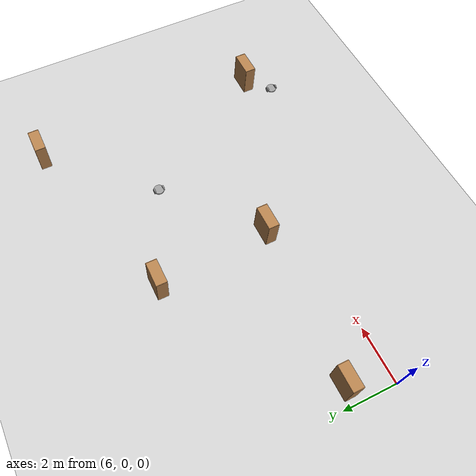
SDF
<sdf version="1.7">
 <world name="default">
  <model name="ground_plane">
   <static>1</static>
   <link name="link">
    <collision name="collision">
     <geometry><plane><normal>0 0 1</normal><size>100 100</size></plane></geometry>
     <surface>
      <contact><collide_bitmask>65535</collide_bitmask></contact>
      <friction><ode><mu>100</mu><mu2>50</mu2></ode></friction>
     </surface>
    </collision>
    <visual name="visual">
     <cast_shadows>0</cast_shadows>
     <geometry><plane><normal>0 0 1</normal><size>100 100</size></plane></geometry>
     <material>
      <script><uri>file://media/materials/scripts/gazebo.material</uri><name>Gazebo/Grey</name></script>
     </material>
    </visual>
   </link>
  </model>
  <model name="myrooomba2">
   <link name="link_1">
    <inertial>
     <mass>1</mass>
     <inertia><ixx>0.145833</ixx><ixy>0</ixy><ixz>0</ixz><iyy>0.145833</iyy><iyz>0</iyz><izz>0.125</izz></inertia>
     <pose>0 0 0.2 0 -0 0</pose>
    </inertial>
    <pose>0.330896 -0.819505 0.5 0 -0 0</pose>
    <visual name="visual">
     <geometry><cylinder><radius>0.2</radius><length>0.05</length></cylinder></geometry>
     <material>
      <lighting>1</lighting>
      <script><uri>file://media/materials/scripts/gazebo.material</uri><name>Gazebo/Grey</name></script>
      <shader type="pixel"><normal_map>__default__</normal_map></shader>
      <ambient>0.3 0.3 0.3 1</ambient>
      <diffuse>0.7 0.7 0.7 1</diffuse>
      <specular>0.01 0.01 0.01 1</specular>
      <emissive>0 0 0 1</emissive>
     </material>
    </visual>
    <collision name="collision">
     <geometry><cylinder><radius>0.2</radius><length>0.05</length></cylinder></geometry>
     <surface>
      <friction>
       <ode><mu>1</mu><mu2>1</mu2><fdir1>0 0 0</fdir1><slip1>0</slip1><slip2>0</slip2></ode>
       <torsional>
        <coefficient>1</coefficient>
        <patch_radius>0</patch_radius>
        <surface_radius>0</surface_radius>
        <use_patch_radius>1</use_patch_radius>
        <ode><slip>0</slip></ode>
       </torsional>
      </friction>
      <bounce><restitution_coefficient>0</restitution_coefficient><threshold>1e+06</threshold></bounce>
      <contact>
       <collide_without_contact>0</collide_without_contact>
       <collide_without_contact_bitmask>1</collide_without_contact_bitmask>
       <collide_bitmask>1</collide_bitmask>
       <ode>
        <soft_cfm>0</soft_cfm>
        <soft_erp>0.2</soft_erp>
        <kp>1e+13</kp>
        <kd>1</kd>
        <max_vel>0.01</max_vel>
        <min_depth>0</min_depth>
       </ode>
       <bullet>
        <split_impulse>1</split_impulse>
        <split_impulse_penetration_threshold>-0.01</split_impulse_penetration_threshold>
        <soft_cfm>0</soft_cfm>
        <soft_erp>0.2</soft_erp>
        <kp>1e+13</kp>
        <kd>1</kd>
       </bullet>
      </contact>
     </surface>
    </collision>
   </link>
   <link name="link_2_clone">
    <inertial>
     <mass>1</mass>
     <inertia><ixx>0.145833</ixx><ixy>0</ixy><ixz>0</ixz><iyy>0.145833</iyy><iyz>0</iyz><izz>0.125</izz></inertia>
    </inertial>
    <pose>0.330896 -0.994495 0.5 1.5707 -0 0</pose>
    <visual name="visual">
     <geometry><cylinder><radius>0.1</radius><length>0.05</length></cylinder></geometry>
     <material>
      <lighting>1</lighting>
      <script><uri>file://media/materials/scripts/gazebo.material</uri><name>Gazebo/Grey</name></script>
      <shader type="pixel"><normal_map>__default__</normal_map></shader>
      <ambient>0.3 0.3 0.3 1</ambient>
      <diffuse>0.7 0.7 0.7 1</diffuse>
      <specular>0.01 0.01 0.01 1</specular>
      <emissive>0 0 0 1</emissive>
     </material>
    </visual>
    <collision name="collision">
     <geometry><cylinder><radius>0.1</radius><length>0.05</length></cylinder></geometry>
     <surface>
      <friction>
       <ode><mu>1</mu><mu2>1</mu2><fdir1>0 0 0</fdir1><slip1>0</slip1><slip2>0</slip2></ode>
       <torsional>
        <coefficient>1</coefficient>
        <patch_radius>0</patch_radius>
        <surface_radius>0</surface_radius>
        <use_patch_radius>1</use_patch_radius>
        <ode><slip>0</slip></ode>
       </torsional>
      </friction>
      <bounce><restitution_coefficient>0</restitution_coefficient><threshold>1e+06</threshold></bounce>
      <contact>
       <collide_without_contact>0</collide_without_contact>
       <collide_without_contact_bitmask>1</collide_without_contact_bitmask>
       <collide_bitmask>1</collide_bitmask>
       <ode>
        <soft_cfm>0</soft_cfm>
        <soft_erp>0.2</soft_erp>
        <kp>1e+13</kp>
        <kd>1</kd>
        <max_vel>0.01</max_vel>
        <min_depth>0</min_depth>
       </ode>
       <bullet>
        <split_impulse>1</split_impulse>
        <split_impulse_penetration_threshold>-0.01</split_impulse_penetration_threshold>
        <soft_cfm>0</soft_cfm>
        <soft_erp>0.2</soft_erp>
        <kp>1e+13</kp>
        <kd>1</kd>
       </bullet>
      </contact>
     </surface>
    </collision>
   </link>
   <link name="link_2_clone_clone">
    <inertial>
     <mass>1</mass>
     <inertia><ixx>0.145833</ixx><ixy>0</ixy><ixz>0</ixz><iyy>0.145833</iyy><iyz>0</iyz><izz>0.125</izz></inertia>
    </inertial>
    <pose>0.330896 -0.644515 0.5 1.5707 -0 0</pose>
    <visual name="visual">
     <geometry><cylinder><radius>0.1</radius><length>0.05</length></cylinder></geometry>
     <material>
      <lighting>1</lighting>
      <script><uri>file://media/materials/scripts/gazebo.material</uri><name>Gazebo/Grey</name></script>
      <shader type="pixel"><normal_map>__default__</normal_map></shader>
      <ambient>0.3 0.3 0.3 1</ambient>
      <diffuse>0.7 0.7 0.7 1</diffuse>
      <specular>0.01 0.01 0.01 1</specular>
      <emissive>0 0 0 1</emissive>
     </material>
    </visual>
    <collision name="collision">
     <geometry><cylinder><radius>0.1</radius><length>0.05</length></cylinder></geometry>
     <surface>
      <friction>
       <ode><mu>1</mu><mu2>1</mu2><fdir1>0 0 0</fdir1><slip1>0</slip1><slip2>0</slip2></ode>
       <torsional>
        <coefficient>1</coefficient>
        <patch_radius>0</patch_radius>
        <surface_radius>0</surface_radius>
        <use_patch_radius>1</use_patch_radius>
        <ode><slip>0</slip></ode>
       </torsional>
      </friction>
      <bounce><restitution_coefficient>0</restitution_coefficient><threshold>1e+06</threshold></bounce>
      <contact>
       <collide_without_contact>0</collide_without_contact>
       <collide_without_contact_bitmask>1</collide_without_contact_bitmask>
       <collide_bitmask>1</collide_bitmask>
       <ode>
        <soft_cfm>0</soft_cfm>
        <soft_erp>0.2</soft_erp>
        <kp>1e+13</kp>
        <kd>1</kd>
        <max_vel>0.01</max_vel>
        <min_depth>0</min_depth>
       </ode>
       <bullet>
        <split_impulse>1</split_impulse>
        <split_impulse_penetration_threshold>-0.01</split_impulse_penetration_threshold>
        <soft_cfm>0</soft_cfm>
        <soft_erp>0.2</soft_erp>
        <kp>1e+13</kp>
        <kd>1</kd>
       </bullet>
      </contact>
     </surface>
    </collision>
   </link>
   <joint name="link_1_JOINT_2" type="revolute">
    <parent>link_1</parent>
    <child>link_2_clone</child>
    <axis>
     <xyz>0 0 1</xyz>
     <limit>
      <lower>-1.79769e+308</lower>
      <upper>1.79769e+308</upper>
      <effort>-1</effort>
      <velocity>-1</velocity>
     </limit>
     <dynamics>
      <spring_reference>0</spring_reference>
      <spring_stiffness>0</spring_stiffness>
      <damping>0</damping>
     </dynamics>
    </axis>
    <physics>
     <ode><limit><cfm>0</cfm><erp>0.2</erp></limit><suspension><cfm>0</cfm><erp>0.2</erp></suspension></ode>
    </physics>
   </joint>
   <joint name="link_1_JOINT_3" type="revolute">
    <parent>link_1</parent>
    <child>link_2_clone_clone</child>
    <axis>
     <xyz>0 0 1</xyz>
     <limit>
      <lower>-1.79769e+308</lower>
      <upper>1.79769e+308</upper>
      <effort>-1</effort>
      <velocity>-1</velocity>
     </limit>
     <dynamics>
      <spring_reference>0</spring_reference>
      <spring_stiffness>0</spring_stiffness>
      <damping>0</damping>
     </dynamics>
    </axis>
    <physics>
     <ode><limit><cfm>0</cfm><erp>0.2</erp></limit><suspension><cfm>0</cfm><erp>0.2</erp></suspension></ode>
    </physics>
   </joint>
   <static>0</static>
   <pose>17.9799 -1.41612 -0.399997 0 -0 0</pose>
  </model>
  <model name="myrooomba2_0">
   <link name="link_1">
    <inertial>
     <mass>1</mass>
     <inertia><ixx>0.145833</ixx><ixy>0</ixy><ixz>0</ixz><iyy>0.145833</iyy><iyz>0</iyz><izz>0.125</izz></inertia>
     <pose>0 0 0.2 0 -0 0</pose>
    </inertial>
    <pose>0.330896 -0.819505 0.5 0 -0 0</pose>
    <visual name="visual">
     <geometry><cylinder><radius>0.2</radius><length>0.05</length></cylinder></geometry>
     <material>
      <lighting>1</lighting>
      <script><uri>file://media/materials/scripts/gazebo.material</uri><name>Gazebo/Grey</name></script>
      <shader type="pixel"><normal_map>__default__</normal_map></shader>
      <ambient>0.3 0.3 0.3 1</ambient>
      <diffuse>0.7 0.7 0.7 1</diffuse>
      <specular>0.01 0.01 0.01 1</specular>
      <emissive>0 0 0 1</emissive>
     </material>
    </visual>
    <collision name="collision">
     <geometry><cylinder><radius>0.2</radius><length>0.05</length></cylinder></geometry>
     <surface>
      <friction>
       <ode><mu>1</mu><mu2>1</mu2><fdir1>0 0 0</fdir1><slip1>0</slip1><slip2>0</slip2></ode>
       <torsional>
        <coefficient>1</coefficient>
        <patch_radius>0</patch_radius>
        <surface_radius>0</surface_radius>
        <use_patch_radius>1</use_patch_radius>
        <ode><slip>0</slip></ode>
       </torsional>
      </friction>
      <bounce><restitution_coefficient>0</restitution_coefficient><threshold>1e+06</threshold></bounce>
      <contact>
       <collide_without_contact>0</collide_without_contact>
       <collide_without_contact_bitmask>1</collide_without_contact_bitmask>
       <collide_bitmask>1</collide_bitmask>
       <ode>
        <soft_cfm>0</soft_cfm>
        <soft_erp>0.2</soft_erp>
        <kp>1e+13</kp>
        <kd>1</kd>
        <max_vel>0.01</max_vel>
        <min_depth>0</min_depth>
       </ode>
       <bullet>
        <split_impulse>1</split_impulse>
        <split_impulse_penetration_threshold>-0.01</split_impulse_penetration_threshold>
        <soft_cfm>0</soft_cfm>
        <soft_erp>0.2</soft_erp>
        <kp>1e+13</kp>
        <kd>1</kd>
       </bullet>
      </contact>
     </surface>
    </collision>
   </link>
   <link name="link_2_clone">
    <inertial>
     <mass>1</mass>
     <inertia><ixx>0.145833</ixx><ixy>0</ixy><ixz>0</ixz><iyy>0.145833</iyy><iyz>0</iyz><izz>0.125</izz></inertia>
    </inertial>
    <pose>0.330896 -0.994495 0.5 1.5707 -0 0</pose>
    <visual name="visual">
     <geometry><cylinder><radius>0.1</radius><length>0.05</length></cylinder></geometry>
     <material>
      <lighting>1</lighting>
      <script><uri>file://media/materials/scripts/gazebo.material</uri><name>Gazebo/Grey</name></script>
      <shader type="pixel"><normal_map>__default__</normal_map></shader>
      <ambient>0.3 0.3 0.3 1</ambient>
      <diffuse>0.7 0.7 0.7 1</diffuse>
      <specular>0.01 0.01 0.01 1</specular>
      <emissive>0 0 0 1</emissive>
     </material>
    </visual>
    <collision name="collision">
     <geometry><cylinder><radius>0.1</radius><length>0.05</length></cylinder></geometry>
     <surface>
      <friction>
       <ode><mu>1</mu><mu2>1</mu2><fdir1>0 0 0</fdir1><slip1>0</slip1><slip2>0</slip2></ode>
       <torsional>
        <coefficient>1</coefficient>
        <patch_radius>0</patch_radius>
        <surface_radius>0</surface_radius>
        <use_patch_radius>1</use_patch_radius>
        <ode><slip>0</slip></ode>
       </torsional>
      </friction>
      <bounce><restitution_coefficient>0</restitution_coefficient><threshold>1e+06</threshold></bounce>
      <contact>
       <collide_without_contact>0</collide_without_contact>
       <collide_without_contact_bitmask>1</collide_without_contact_bitmask>
       <collide_bitmask>1</collide_bitmask>
       <ode>
        <soft_cfm>0</soft_cfm>
        <soft_erp>0.2</soft_erp>
        <kp>1e+13</kp>
        <kd>1</kd>
        <max_vel>0.01</max_vel>
        <min_depth>0</min_depth>
       </ode>
       <bullet>
        <split_impulse>1</split_impulse>
        <split_impulse_penetration_threshold>-0.01</split_impulse_penetration_threshold>
        <soft_cfm>0</soft_cfm>
        <soft_erp>0.2</soft_erp>
        <kp>1e+13</kp>
        <kd>1</kd>
       </bullet>
      </contact>
     </surface>
    </collision>
   </link>
   <link name="link_2_clone_clone">
    <inertial>
     <mass>1</mass>
     <inertia><ixx>0.145833</ixx><ixy>0</ixy><ixz>0</ixz><iyy>0.145833</iyy><iyz>0</iyz><izz>0.125</izz></inertia>
    </inertial>
    <pose>0.330896 -0.644515 0.5 1.5707 -0 0</pose>
    <visual name="visual">
     <geometry><cylinder><radius>0.1</radius><length>0.05</length></cylinder></geometry>
     <material>
      <lighting>1</lighting>
      <script><uri>file://media/materials/scripts/gazebo.material</uri><name>Gazebo/Grey</name></script>
      <shader type="pixel"><normal_map>__default__</normal_map></shader>
      <ambient>0.3 0.3 0.3 1</ambient>
      <diffuse>0.7 0.7 0.7 1</diffuse>
      <specular>0.01 0.01 0.01 1</specular>
      <emissive>0 0 0 1</emissive>
     </material>
    </visual>
    <collision name="collision">
     <geometry><cylinder><radius>0.1</radius><length>0.05</length></cylinder></geometry>
     <surface>
      <friction>
       <ode><mu>1</mu><mu2>1</mu2><fdir1>0 0 0</fdir1><slip1>0</slip1><slip2>0</slip2></ode>
       <torsional>
        <coefficient>1</coefficient>
        <patch_radius>0</patch_radius>
        <surface_radius>0</surface_radius>
        <use_patch_radius>1</use_patch_radius>
        <ode><slip>0</slip></ode>
       </torsional>
      </friction>
      <bounce><restitution_coefficient>0</restitution_coefficient><threshold>1e+06</threshold></bounce>
      <contact>
       <collide_without_contact>0</collide_without_contact>
       <collide_without_contact_bitmask>1</collide_without_contact_bitmask>
       <collide_bitmask>1</collide_bitmask>
       <ode>
        <soft_cfm>0</soft_cfm>
        <soft_erp>0.2</soft_erp>
        <kp>1e+13</kp>
        <kd>1</kd>
        <max_vel>0.01</max_vel>
        <min_depth>0</min_depth>
       </ode>
       <bullet>
        <split_impulse>1</split_impulse>
        <split_impulse_penetration_threshold>-0.01</split_impulse_penetration_threshold>
        <soft_cfm>0</soft_cfm>
        <soft_erp>0.2</soft_erp>
        <kp>1e+13</kp>
        <kd>1</kd>
       </bullet>
      </contact>
     </surface>
    </collision>
   </link>
   <joint name="link_1_JOINT_2" type="revolute">
    <parent>link_1</parent>
    <child>link_2_clone</child>
    <axis>
     <xyz>0 0 1</xyz>
     <limit>
      <lower>-1.79769e+308</lower>
      <upper>1.79769e+308</upper>
      <effort>-1</effort>
      <velocity>-1</velocity>
     </limit>
     <dynamics>
      <spring_reference>0</spring_reference>
      <spring_stiffness>0</spring_stiffness>
      <damping>0</damping>
     </dynamics>
    </axis>
    <physics>
     <ode><limit><cfm>0</cfm><erp>0.2</erp></limit><suspension><cfm>0</cfm><erp>0.2</erp></suspension></ode>
    </physics>
   </joint>
   <joint name="link_1_JOINT_3" type="revolute">
    <parent>link_1</parent>
    <child>link_2_clone_clone</child>
    <axis>
     <xyz>0 0 1</xyz>
     <limit>
      <lower>-1.79769e+308</lower>
      <upper>1.79769e+308</upper>
      <effort>-1</effort>
      <velocity>-1</velocity>
     </limit>
     <dynamics>
      <spring_reference>0</spring_reference>
      <spring_stiffness>0</spring_stiffness>
      <damping>0</damping>
     </dynamics>
    </axis>
    <physics>
     <ode><limit><cfm>0</cfm><erp>0.2</erp></limit><suspension><cfm>0</cfm><erp>0.2</erp></suspension></ode>
    </physics>
   </joint>
   <static>0</static>
   <pose>15.4229 4.77618 -0.399995 4e-06 -0 0</pose>
  </model>
  <model name="bookshelf">
   <static>1</static>
   <link name="link">
    <inertial><mass>1</mass></inertial>
    <collision name="back">
     <pose>0 0.005 0.6 0 -0 0</pose>
     <geometry><box><size>0.9 0.01 1.2</size></box></geometry>
    </collision>
    <visual name="visual1">
     <pose>0 0.005 0.6 0 -0 0</pose>
     <geometry><box><size>0.9 0.01 1.2</size></box></geometry>
     <material>
      <script><uri>file://media/materials/scripts/gazebo.material</uri><name>Gazebo/Wood</name></script>
     </material>
    </visual>
    <collision name="left_side">
     <pose>0.45 -0.195 0.6 0 -0 0</pose>
     <geometry><box><size>0.02 0.4 1.2</size></box></geometry>
    </collision>
    <visual name="visual2">
     <pose>0.45 -0.195 0.6 0 -0 0</pose>
     <geometry><box><size>0.02 0.4 1.2</size></box></geometry>
     <material>
      <script><uri>file://media/materials/scripts/gazebo.material</uri><name>Gazebo/Wood</name></script>
     </material>
    </visual>
    <collision name="right_side">
     <pose>-0.45 -0.195 0.6 0 -0 0</pose>
     <geometry><box><size>0.02 0.4 1.2</size></box></geometry>
    </collision>
    <visual name="visual3">
     <pose>-0.45 -0.195 0.6 0 -0 0</pose>
     <geometry><box><size>0.02 0.4 1.2</size></box></geometry>
     <material>
      <script><uri>file://media/materials/scripts/gazebo.material</uri><name>Gazebo/Wood</name></script>
     </material>
    </visual>
    <collision name="bottom">
     <pose>0 -0.195 0.03 0 -0 0</pose>
     <geometry><box><size>0.88 0.4 0.06</size></box></geometry>
    </collision>
    <visual name="visual4">
     <pose>0 -0.195 0.03 0 -0 0</pose>
     <geometry><box><size>0.88 0.4 0.06</size></box></geometry>
     <material>
      <script><uri>file://media/materials/scripts/gazebo.material</uri><name>Gazebo/Wood</name></script>
     </material>
    </visual>
    <collision name="top">
     <pose>0 -0.195 1.19 0 -0 0</pose>
     <geometry><box><size>0.88 0.4 0.02</size></box></geometry>
    </collision>
    <visual name="visual5">
     <pose>0 -0.195 1.19 0 -0 0</pose>
     <geometry><box><size>0.88 0.4 0.02</size></box></geometry>
     <material>
      <script><uri>file://media/materials/scripts/gazebo.material</uri><name>Gazebo/Wood</name></script>
     </material>
    </visual>
    <collision name="low_shelf">
     <pose>0 -0.195 0.43 0 -0 0</pose>
     <geometry><box><size>0.88 0.4 0.02</size></box></geometry>
    </collision>
    <visual name="visual6">
     <pose>0 -0.195 0.43 0 -0 0</pose>
     <geometry><box><size>0.88 0.4 0.02</size></box></geometry>
     <material>
      <script><uri>file://media/materials/scripts/gazebo.material</uri><name>Gazebo/Wood</name></script>
     </material>
    </visual>
    <collision name="high_shelf">
     <pose>0 -0.195 0.8 0 -0 0</pose>
     <geometry><box><size>0.88 0.4 0.02</size></box></geometry>
    </collision>
    <visual name="visual7">
     <pose>0 -0.195 0.8 0 -0 0</pose>
     <geometry><box><size>0.88 0.4 0.02</size></box></geometry>
     <material>
      <script><uri>file://media/materials/scripts/gazebo.material</uri><name>Gazebo/Wood</name></script>
     </material>
    </visual>
   </link>
   <pose>6.6918 1.77347 0 0 -0 0</pose>
  </model>
  <model name="bookshelf_3">
   <static>1</static>
   <link name="link">
    <inertial><mass>1</mass></inertial>
    <collision name="back">
     <pose>0 0.005 0.6 0 -0 0</pose>
     <geometry><box><size>0.9 0.01 1.2</size></box></geometry>
    </collision>
    <visual name="visual1">
     <pose>0 0.005 0.6 0 -0 0</pose>
     <geometry><box><size>0.9 0.01 1.2</size></box></geometry>
     <material>
      <script><uri>file://media/materials/scripts/gazebo.material</uri><name>Gazebo/Wood</name></script>
     </material>
    </visual>
    <collision name="left_side">
     <pose>0.45 -0.195 0.6 0 -0 0</pose>
     <geometry><box><size>0.02 0.4 1.2</size></box></geometry>
    </collision>
    <visual name="visual2">
     <pose>0.45 -0.195 0.6 0 -0 0</pose>
     <geometry><box><size>0.02 0.4 1.2</size></box></geometry>
     <material>
      <script><uri>file://media/materials/scripts/gazebo.material</uri><name>Gazebo/Wood</name></script>
     </material>
    </visual>
    <collision name="right_side">
     <pose>-0.45 -0.195 0.6 0 -0 0</pose>
     <geometry><box><size>0.02 0.4 1.2</size></box></geometry>
    </collision>
    <visual name="visual3">
     <pose>-0.45 -0.195 0.6 0 -0 0</pose>
     <geometry><box><size>0.02 0.4 1.2</size></box></geometry>
     <material>
      <script><uri>file://media/materials/scripts/gazebo.material</uri><name>Gazebo/Wood</name></script>
     </material>
    </visual>
    <collision name="bottom">
     <pose>0 -0.195 0.03 0 -0 0</pose>
     <geometry><box><size>0.88 0.4 0.06</size></box></geometry>
    </collision>
    <visual name="visual4">
     <pose>0 -0.195 0.03 0 -0 0</pose>
     <geometry><box><size>0.88 0.4 0.06</size></box></geometry>
     <material>
      <script><uri>file://media/materials/scripts/gazebo.material</uri><name>Gazebo/Wood</name></script>
     </material>
    </visual>
    <collision name="top">
     <pose>0 -0.195 1.19 0 -0 0</pose>
     <geometry><box><size>0.88 0.4 0.02</size></box></geometry>
    </collision>
    <visual name="visual5">
     <pose>0 -0.195 1.19 0 -0 0</pose>
     <geometry><box><size>0.88 0.4 0.02</size></box></geometry>
     <material>
      <script><uri>file://media/materials/scripts/gazebo.material</uri><name>Gazebo/Wood</name></script>
     </material>
    </visual>
    <collision name="low_shelf">
     <pose>0 -0.195 0.43 0 -0 0</pose>
     <geometry><box><size>0.88 0.4 0.02</size></box></geometry>
    </collision>
    <visual name="visual6">
     <pose>0 -0.195 0.43 0 -0 0</pose>
     <geometry><box><size>0.88 0.4 0.02</size></box></geometry>
     <material>
      <script><uri>file://media/materials/scripts/gazebo.material</uri><name>Gazebo/Wood</name></script>
     </material>
    </visual>
    <collision name="high_shelf">
     <pose>0 -0.195 0.8 0 -0 0</pose>
     <geometry><box><size>0.88 0.4 0.02</size></box></geometry>
    </collision>
    <visual name="visual7">
     <pose>0 -0.195 0.8 0 -0 0</pose>
     <geometry><box><size>0.88 0.4 0.02</size></box></geometry>
     <material>
      <script><uri>file://media/materials/scripts/gazebo.material</uri><name>Gazebo/Wood</name></script>
     </material>
    </visual>
   </link>
   <pose>12.5249 1.39573 0 0 -0 0</pose>
  </model>
  <model name="bookshelf_4">
   <static>1</static>
   <link name="link">
    <inertial><mass>1</mass></inertial>
    <collision name="back">
     <pose>0 0.005 0.6 0 -0 0</pose>
     <geometry><box><size>0.9 0.01 1.2</size></box></geometry>
    </collision>
    <visual name="visual1">
     <pose>0 0.005 0.6 0 -0 0</pose>
     <geometry><box><size>0.9 0.01 1.2</size></box></geometry>
     <material>
      <script><uri>file://media/materials/scripts/gazebo.material</uri><name>Gazebo/Wood</name></script>
     </material>
    </visual>
    <collision name="left_side">
     <pose>0.45 -0.195 0.6 0 -0 0</pose>
     <geometry><box><size>0.02 0.4 1.2</size></box></geometry>
    </collision>
    <visual name="visual2">
     <pose>0.45 -0.195 0.6 0 -0 0</pose>
     <geometry><box><size>0.02 0.4 1.2</size></box></geometry>
     <material>
      <script><uri>file://media/materials/scripts/gazebo.material</uri><name>Gazebo/Wood</name></script>
     </material>
    </visual>
    <collision name="right_side">
     <pose>-0.45 -0.195 0.6 0 -0 0</pose>
     <geometry><box><size>0.02 0.4 1.2</size></box></geometry>
    </collision>
    <visual name="visual3">
     <pose>-0.45 -0.195 0.6 0 -0 0</pose>
     <geometry><box><size>0.02 0.4 1.2</size></box></geometry>
     <material>
      <script><uri>file://media/materials/scripts/gazebo.material</uri><name>Gazebo/Wood</name></script>
     </material>
    </visual>
    <collision name="bottom">
     <pose>0 -0.195 0.03 0 -0 0</pose>
     <geometry><box><size>0.88 0.4 0.06</size></box></geometry>
    </collision>
    <visual name="visual4">
     <pose>0 -0.195 0.03 0 -0 0</pose>
     <geometry><box><size>0.88 0.4 0.06</size></box></geometry>
     <material>
      <script><uri>file://media/materials/scripts/gazebo.material</uri><name>Gazebo/Wood</name></script>
     </material>
    </visual>
    <collision name="top">
     <pose>0 -0.195 1.19 0 -0 0</pose>
     <geometry><box><size>0.88 0.4 0.02</size></box></geometry>
    </collision>
    <visual name="visual5">
     <pose>0 -0.195 1.19 0 -0 0</pose>
     <geometry><box><size>0.88 0.4 0.02</size></box></geometry>
     <material>
      <script><uri>file://media/materials/scripts/gazebo.material</uri><name>Gazebo/Wood</name></script>
     </material>
    </visual>
    <collision name="low_shelf">
     <pose>0 -0.195 0.43 0 -0 0</pose>
     <geometry><box><size>0.88 0.4 0.02</size></box></geometry>
    </collision>
    <visual name="visual6">
     <pose>0 -0.195 0.43 0 -0 0</pose>
     <geometry><box><size>0.88 0.4 0.02</size></box></geometry>
     <material>
      <script><uri>file://media/materials/scripts/gazebo.material</uri><name>Gazebo/Wood</name></script>
     </material>
    </visual>
    <collision name="high_shelf">
     <pose>0 -0.195 0.8 0 -0 0</pose>
     <geometry><box><size>0.88 0.4 0.02</size></box></geometry>
    </collision>
    <visual name="visual7">
     <pose>0 -0.195 0.8 0 -0 0</pose>
     <geometry><box><size>0.88 0.4 0.02</size></box></geometry>
     <material>
      <script><uri>file://media/materials/scripts/gazebo.material</uri><name>Gazebo/Wood</name></script>
     </material>
    </visual>
   </link>
   <pose>19.011 7.6187 0 0 -0 0</pose>
  </model>
  <model name="bookshelf_5">
   <static>1</static>
   <link name="link">
    <inertial><mass>1</mass></inertial>
    <collision name="back">
     <pose>0 0.005 0.6 0 -0 0</pose>
     <geometry><box><size>0.9 0.01 1.2</size></box></geometry>
    </collision>
    <visual name="visual1">
     <pose>0 0.005 0.6 0 -0 0</pose>
     <geometry><box><size>0.9 0.01 1.2</size></box></geometry>
     <material>
      <script><uri>file://media/materials/scripts/gazebo.material</uri><name>Gazebo/Wood</name></script>
     </material>
    </visual>
    <collision name="left_side">
     <pose>0.45 -0.195 0.6 0 -0 0</pose>
     <geometry><box><size>0.02 0.4 1.2</size></box></geometry>
    </collision>
    <visual name="visual2">
     <pose>0.45 -0.195 0.6 0 -0 0</pose>
     <geometry><box><size>0.02 0.4 1.2</size></box></geometry>
     <material>
      <script><uri>file://media/materials/scripts/gazebo.material</uri><name>Gazebo/Wood</name></script>
     </material>
    </visual>
    <collision name="right_side">
     <pose>-0.45 -0.195 0.6 0 -0 0</pose>
     <geometry><box><size>0.02 0.4 1.2</size></box></geometry>
    </collision>
    <visual name="visual3">
     <pose>-0.45 -0.195 0.6 0 -0 0</pose>
     <geometry><box><size>0.02 0.4 1.2</size></box></geometry>
     <material>
      <script><uri>file://media/materials/scripts/gazebo.material</uri><name>Gazebo/Wood</name></script>
     </material>
    </visual>
    <collision name="bottom">
     <pose>0 -0.195 0.03 0 -0 0</pose>
     <geometry><box><size>0.88 0.4 0.06</size></box></geometry>
    </collision>
    <visual name="visual4">
     <pose>0 -0.195 0.03 0 -0 0</pose>
     <geometry><box><size>0.88 0.4 0.06</size></box></geometry>
     <material>
      <script><uri>file://media/materials/scripts/gazebo.material</uri><name>Gazebo/Wood</name></script>
     </material>
    </visual>
    <collision name="top">
     <pose>0 -0.195 1.19 0 -0 0</pose>
     <geometry><box><size>0.88 0.4 0.02</size></box></geometry>
    </collision>
    <visual name="visual5">
     <pose>0 -0.195 1.19 0 -0 0</pose>
     <geometry><box><size>0.88 0.4 0.02</size></box></geometry>
     <material>
      <script><uri>file://media/materials/scripts/gazebo.material</uri><name>Gazebo/Wood</name></script>
     </material>
    </visual>
    <collision name="low_shelf">
     <pose>0 -0.195 0.43 0 -0 0</pose>
     <geometry><box><size>0.88 0.4 0.02</size></box></geometry>
    </collision>
    <visual name="visual6">
     <pose>0 -0.195 0.43 0 -0 0</pose>
     <geometry><box><size>0.88 0.4 0.02</size></box></geometry>
     <material>
      <script><uri>file://media/materials/scripts/gazebo.material</uri><name>Gazebo/Wood</name></script>
     </material>
    </visual>
    <collision name="high_shelf">
     <pose>0 -0.195 0.8 0 -0 0</pose>
     <geometry><box><size>0.88 0.4 0.02</size></box></geometry>
    </collision>
    <visual name="visual7">
     <pose>0 -0.195 0.8 0 -0 0</pose>
     <geometry><box><size>0.88 0.4 0.02</size></box></geometry>
     <material>
      <script><uri>file://media/materials/scripts/gazebo.material</uri><name>Gazebo/Wood</name></script>
     </material>
    </visual>
   </link>
   <pose>19.1309 -1.17486 0 0 -0 0</pose>
  </model>
  <model name="bookshelf_6">
   <static>1</static>
   <link name="link">
    <inertial><mass>1</mass></inertial>
    <collision name="back">
     <pose>0 0.005 0.6 0 -0 0</pose>
     <geometry><box><size>0.9 0.01 1.2</size></box></geometry>
    </collision>
    <visual name="visual1">
     <pose>0 0.005 0.6 0 -0 0</pose>
     <geometry><box><size>0.9 0.01 1.2</size></box></geometry>
     <material>
      <script><uri>file://media/materials/scripts/gazebo.material</uri><name>Gazebo/Wood</name></script>
     </material>
    </visual>
    <collision name="left_side">
     <pose>0.45 -0.195 0.6 0 -0 0</pose>
     <geometry><box><size>0.02 0.4 1.2</size></box></geometry>
    </collision>
    <visual name="visual2">
     <pose>0.45 -0.195 0.6 0 -0 0</pose>
     <geometry><box><size>0.02 0.4 1.2</size></box></geometry>
     <material>
      <script><uri>file://media/materials/scripts/gazebo.material</uri><name>Gazebo/Wood</name></script>
     </material>
    </visual>
    <collision name="right_side">
     <pose>-0.45 -0.195 0.6 0 -0 0</pose>
     <geometry><box><size>0.02 0.4 1.2</size></box></geometry>
    </collision>
    <visual name="visual3">
     <pose>-0.45 -0.195 0.6 0 -0 0</pose>
     <geometry><box><size>0.02 0.4 1.2</size></box></geometry>
     <material>
      <script><uri>file://media/materials/scripts/gazebo.material</uri><name>Gazebo/Wood</name></script>
     </material>
    </visual>
    <collision name="bottom">
     <pose>0 -0.195 0.03 0 -0 0</pose>
     <geometry><box><size>0.88 0.4 0.06</size></box></geometry>
    </collision>
    <visual name="visual4">
     <pose>0 -0.195 0.03 0 -0 0</pose>
     <geometry><box><size>0.88 0.4 0.06</size></box></geometry>
     <material>
      <script><uri>file://media/materials/scripts/gazebo.material</uri><name>Gazebo/Wood</name></script>
     </material>
    </visual>
    <collision name="top">
     <pose>0 -0.195 1.19 0 -0 0</pose>
     <geometry><box><size>0.88 0.4 0.02</size></box></geometry>
    </collision>
    <visual name="visual5">
     <pose>0 -0.195 1.19 0 -0 0</pose>
     <geometry><box><size>0.88 0.4 0.02</size></box></geometry>
     <material>
      <script><uri>file://media/materials/scripts/gazebo.material</uri><name>Gazebo/Wood</name></script>
     </material>
    </visual>
    <collision name="low_shelf">
     <pose>0 -0.195 0.43 0 -0 0</pose>
     <geometry><box><size>0.88 0.4 0.02</size></box></geometry>
    </collision>
    <visual name="visual6">
     <pose>0 -0.195 0.43 0 -0 0</pose>
     <geometry><box><size>0.88 0.4 0.02</size></box></geometry>
     <material>
      <script><uri>file://media/materials/scripts/gazebo.material</uri><name>Gazebo/Wood</name></script>
     </material>
    </visual>
    <collision name="high_shelf">
     <pose>0 -0.195 0.8 0 -0 0</pose>
     <geometry><box><size>0.88 0.4 0.02</size></box></geometry>
    </collision>
    <visual name="visual7">
     <pose>0 -0.195 0.8 0 -0 0</pose>
     <geometry><box><size>0.88 0.4 0.02</size></box></geometry>
     <material>
      <script><uri>file://media/materials/scripts/gazebo.material</uri><name>Gazebo/Wood</name></script>
     </material>
    </visual>
   </link>
   <pose>12.2359 5.69781 0 0 -0 0</pose>
  </model>
 </world>
</sdf>
